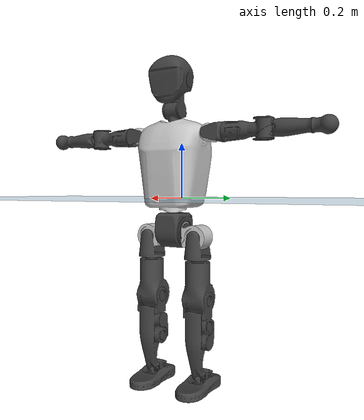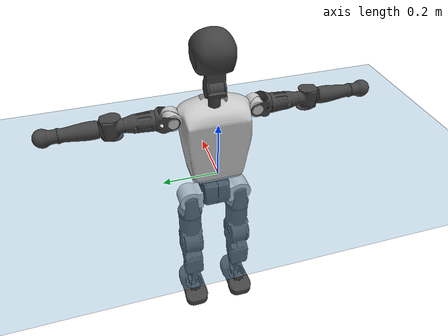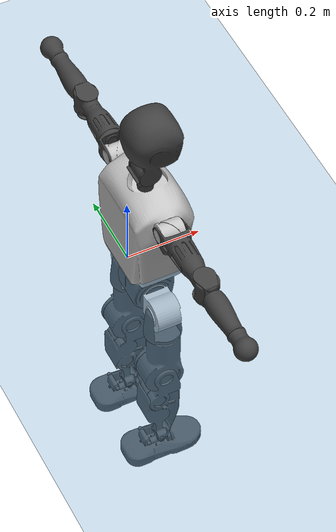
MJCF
<mujoco model="T1">
  <compiler angle="radian" assetdir="assets" balanceinertia="true" inertiafromgeom="false"/>

  <option timestep="0.005" density="1.2" viscosity="2e-05"/>

  <size nkey="1"/>

  <visual>
    <quality shadowsize="8192"/>
    <map shadowclip="0.5"/>
  </visual>

  <default>
    <default class="/">
      <joint armature="0.01" damping="0.01" frictionloss="0.1"/>
      <geom contype="0" conaffinity="0" group="1" solref="-1000 -80"/>
      <site size="0.01 0.005 0.005" group="5"/>
      <general forcelimited="true" biastype="affine" gainprm="25" biasprm="0 -25 -0.6"/>
      <default class="t1">
        <geom rgba="0.25 0.25 0.25 1"/>
        <default class="visual">
          <geom type="mesh" group="2"/>
        </default>
        <default class="collision">
          <geom group="3"/>
        </default>
        <default class="foot">
          <geom size="0.1115 0.05 0.015" type="box" condim="6" group="4" priority="1" solimp="0.015 1 0.015"/>
        </default>
        <default class="reward_collision_sphere">
          <geom group="5" rgba="1 0 0 1"/>
        </default>
      </default>
    </default>
  </default>

  <asset>
    <texture type="skybox" colorspace="auto" name="//unnamed_texture_0" builtin="gradient" rgb1="0.95 0.95 0.95" rgb2="0.95 0.95 0.95" width="100" height="600"/>
    <texture type="2d" colorspace="auto" name="texplane" builtin="checker" rgb1="0.345 0.575 0.748" rgb2="0.345 0.575 0.748" markrgb="1 1 1" width="512" height="512"/>
    <material name="MatPlane" class="/" texture="texplane" texuniform="true" texrepeat="2 2" specular="0.9"/>
    <mesh name="Trunk" class="/" file="Trunk.stl"/>
    <mesh name="H1" class="/" file="H1.stl"/>
    <mesh name="H2" class="/" file="H2.stl"/>
    <mesh name="AL1" class="/" file="AL1.stl"/>
    <mesh name="AL2" class="/" file="AL2.stl"/>
    <mesh name="AL3" class="/" file="AL3.stl"/>
    <mesh name="left_hand_link" class="/" file="left_hand_link.stl"/>
    <mesh name="AR1" class="/" file="AR1.stl"/>
    <mesh name="AR2" class="/" file="AR2.stl"/>
    <mesh name="AR3" class="/" file="AR3.stl"/>
    <mesh name="right_hand_link" class="/" file="right_hand_link.stl"/>
    <mesh name="Waist" class="/" file="Waist.stl"/>
    <mesh name="Hip_Pitch_Left" class="/" file="Hip_Pitch_Left.stl"/>
    <mesh name="Hip_Roll_Left" class="/" file="Hip_Roll_Left.stl"/>
    <mesh name="Hip_Yaw_Left" class="/" file="Hip_Yaw_Left.stl"/>
    <mesh name="Shank_Left" class="/" file="Shank_Left.stl"/>
    <mesh name="Ankle_Cross_Left" class="/" file="Ankle_Cross_Left.stl"/>
    <mesh name="left_foot_link" class="/" file="left_foot_link.stl"/>
    <mesh name="Hip_Pitch_Right" class="/" file="Hip_Pitch_Right.stl"/>
    <mesh name="Hip_Roll_Right" class="/" file="Hip_Roll_Right.stl"/>
    <mesh name="Hip_Yaw_Right" class="/" file="Hip_Yaw_Right.stl"/>
    <mesh name="Shank_Right" class="/" file="Shank_Right.stl"/>
    <mesh name="Ankle_Cross_Right" class="/" file="Ankle_Cross_Right.stl"/>
    <mesh name="right_foot_link" class="/" file="right_foot_link.stl"/>
  </asset>

  <worldbody>
    <geom name="floor" class="/" size="100 100 0.125" type="plane" group="0" material="MatPlane"/>
    <light name="toplight_shadow" class="/" pos="0 0 5" dir="0.0990148 0.0990148 -0.990148" type="directional" ambient="0.04 0.04 0.04" diffuse="0.55 0.55 0.55" specular="0.12 0.12 0.12"/>
    <light name="toplight_fill" class="/" pos="0 0 5" dir="0.0990148 0.0990148 -0.990148" type="directional" castshadow="false" ambient="0.04 0.04 0.04" diffuse="0.3 0.3 0.3" specular="0.08 0.08 0.08"/>
    <body name="trunk" childclass="t1" pos="-0.000415695 0.000213741 0.000306799" quat="1 -8.92008e-05 6.52094e-05 -7.0095e-05">
      <inertial pos="0.0457568 -0.000667294 0.109762" quat="0.999959 -0.00221717 -0.00823576 0.00288951" mass="9.38866" diaginertia="0.0379139 0.0479241 0.067219"/>
      <joint name="//unnamed_joint_0" type="free" armature="0" damping="0" frictionloss="0"/>
      <geom name="//unnamed_geom_1" class="visual" rgba="0.76 0.76 0.76 1" mesh="Trunk"/>
      <geom name="//unnamed_geom_2" class="collision" size="0.0695619 0.0927493 0.139124" pos="0.050233 0 0.124271" type="box"/>
      <geom name="//unnamed_geom_3" class="reward_collision_sphere" size="0.106662" pos="0.050233 0 0.103559"/>
      <geom name="//unnamed_geom_4" class="reward_collision_sphere" size="0.0139124" pos="0.050233 0.0773218 0"/>
      <geom name="//unnamed_geom_5" class="reward_collision_sphere" size="0.0139124" pos="0.050233 -0.0773218 0"/>
      <geom name="//unnamed_geom_6" class="reward_collision_sphere" size="0.0139124" pos="0.050233 0.0973345 0.186407"/>
      <geom name="//unnamed_geom_7" class="reward_collision_sphere" size="0.0139124" pos="0.050233 -0.0973345 0.186407"/>
      <site name="imu" pos="-0.00682021 0.00486157 -0.000232413" size="0.00927493"/>
      <camera name="track" pos="0 -1.81934 0" quat="0.707107 0.707107 0 0" mode="trackcom"/>
      <camera name="ego_camera" pos="0.10214 0 0.434949" quat="-0.5 -0.5 0.5 0.5"/>
      <body name="H1" pos="0.0498691 -0.00182061 0.249554" quat="1 -0.00013343 0.000204946 -0.000122029">
        <inertial pos="-0.000769626 -0.00100694 0.0604453" quat="0.768249 -0.0114748 0.00327775 0.640039" mass="0.357238" diaginertia="9.95087e-05 0.000136909 0.000179833"/>
        <joint name="AAHead_yaw" pos="0 0 0" axis="-0.00525998 -0.00325716 0.999981" stiffness="0.00022316" range="-1.56887 1.5564" armature="0.00966351" damping="0.0115135" frictionloss="0.0888834"/>
        <geom name="//unnamed_geom_8" class="visual" mesh="H1"/>
        <body name="H2" pos="-0.000629253 7.92633e-05 0.0638776" quat="1 3.32428e-05 0.000126198 7.11279e-05">
          <inertial pos="0.00586626 -0.000973721 0.102333" quat="0.988443 0.106029 -0.0745929 -0.0785775" mass="0.509196" diaginertia="0.000852216 0.0012025 0.00204254"/>
          <joint name="Head_pitch" pos="0 0 0" axis="3.47098e-05 -1 -9.19133e-06" range="-1.22883 0.348243" armature="0.00911793" damping="0.00685598" frictionloss="0.0920935"/>
          <geom name="//unnamed_geom_9" class="visual" mesh="H2"/>
          <geom name="//unnamed_geom_10" class="collision" size="0.0741994" pos="0.00837217 0 0.113915"/>
          <geom name="//unnamed_geom_11" class="reward_collision_sphere" size="0.0834743" pos="0.0167443 0 0.103559"/>
        </body>
      </body>
      <body name="AL1" pos="0.0480479 0.0990033 0.226139" quat="1 -5.41692e-06 0.000478985 6.69675e-05">
        <inertial pos="-0.0022777 0.0420243 -0.000294732" quat="0.50493 0.49637 -0.503488 0.495138" mass="0.413599" diaginertia="0.000551803 0.0007895 0.00034641"/>
        <joint name="Left_Shoulder_Pitch" pos="0 0 0" axis="-0.00169488 0.999993 -0.00326426" stiffness="0.000816377" range="-3.32771 1.22181" armature="0.00907386" damping="0.00735671" frictionloss="0.0939769"/>
        <geom name="//unnamed_geom_12" class="visual" rgba="0.76 0.76 0.76 1" mesh="AL1"/>
        <body name="AL2" pos="0.000730744 0.0445634 -0.000478523" quat="1 -0.000381976 -0.000261499 5.6265e-05">
          <inertial pos="0.00307588 0.0347633 -0.00119158" quat="0.488096 0.511699 -0.487962 0.511683" mass="0.129291" diaginertia="0.000168075 0.000223187 0.000215257"/>
          <joint name="Left_Shoulder_Roll" pos="0 0 0" axis="-0.999999 0.000609954 0.00137528" range="-1.58026 1.72284" armature="0.00924266" damping="0.014515" frictionloss="0.0903324"/>
          <geom name="//unnamed_geom_13" class="visual" mesh="AL2"/>
          <body name="AL3" pos="0.00225653 0.0556212 0.00132826" quat="1 0.000223517 5.61528e-06 5.10861e-05">
            <inertial pos="-0.000663614 0.0775588 5.16993e-05" quat="0.706086 0.708124 -0.00104454 -0.00129226" mass="0.805412" diaginertia="0.00529817 0.00791334 0.000735999"/>
            <joint name="Left_Elbow_Pitch" pos="0 0 0" axis="-0.000334075 -0.999996 0.00294009" stiffness="0.000647665" range="-2.28186 2.27972" armature="0.00897101" damping="0.0115963" frictionloss="0.0942558"/>
            <geom name="//unnamed_geom_14" class="visual" mesh="AL3"/>
            <geom name="//unnamed_geom_15" class="collision" size="0.0278248 0.0695619" pos="0 0.0454834 0" quat="0.707105 0.707108 0 0" type="cylinder"/>
            <geom name="//unnamed_geom_16" class="reward_collision_sphere" size="0.0333897"/>
            <body name="left_hand_link" pos="-0.00073973 0.134266 0.000997199" quat="1 -4.71205e-05 5.97265e-05 -6.87992e-05">
              <inertial pos="0.00173697 0.099169 -5.33557e-05" quat="0.710078 0.704117 0.00266351 0.00102293" mass="0.260581" diaginertia="0.00333789 0.00503389 0.00025079"/>
              <joint name="Left_Elbow_Yaw" pos="0 0 0" axis="0.00538426 0.000721279 0.999985" range="-2.46368 0.0154329" armature="0.00934729" damping="0.010554" frictionloss="0.0940419"/>
              <geom name="//unnamed_geom_17" class="visual" mesh="left_hand_link"/>
              <geom name="//unnamed_geom_18" class="collision" size="0.0278248 0.0811556" pos="0 0.118257 0" quat="0.707105 0.707108 0 0" type="cylinder"/>
              <geom name="//unnamed_geom_19" class="reward_collision_sphere" size="0.0463746"/>
              <geom name="//unnamed_geom_20" class="reward_collision_sphere" size="0.0324622" pos="0 0.100064 0"/>
              <geom name="//unnamed_geom_21" class="reward_collision_sphere" size="0.0324622" pos="0 0.195579 0"/>
            </body>
          </body>
        </body>
      </body>
      <body name="AR1" pos="0.0484818 -0.0966789 0.227" quat="1 -8.82005e-05 0.000332319 0.000244449">
        <inertial pos="-0.00194249 -0.0415923 -4.68479e-05" quat="0.504242 0.495843 -0.50412 0.495725" mass="0.420021" diaginertia="0.000567003 0.000802486 0.000348734"/>
        <joint name="Right_Shoulder_Pitch" pos="0 0 0" axis="-1.5931e-05 -1 -2.56315e-05" stiffness="0.00202334" range="-1.22383 3.29636" armature="0.00913607" damping="0.000168875" frictionloss="0.0961519"/>
        <geom name="//unnamed_geom_22" class="visual" rgba="0.76 0.76 0.76 1" mesh="AR1"/>
        <body name="AR2" pos="-9.07635e-05 -0.0432523 -0.000997658" quat="1 -2.87782e-05 -0.000122661 5.17547e-05">
          <inertial pos="0.00387086 -0.0343509 -0.00102296" quat="0.512108 0.488811 -0.509973 0.488607" mass="0.126674" diaginertia="0.000164312 0.000210072 0.000206898"/>
          <joint name="Right_Shoulder_Roll" pos="0 0 0" axis="-0.999988 -0.00376073 0.00320309" range="-1.70611 1.56168" armature="0.00886423" damping="0.0149663" frictionloss="0.0932845"/>
          <geom name="//unnamed_geom_23" class="visual" mesh="AR2"/>
          <body name="AR3" pos="-0.000419062 -0.0557748 -0.000894952" quat="1 -5.41262e-06 8.13559e-06 -9.38213e-05">
            <inertial pos="-0.00169345 -0.0784891 0.000316219" quat="0.707512 0.706689 -0.00211827 -0.0037044" mass="0.816516" diaginertia="0.00529036 0.00799991 0.000754913"/>
            <joint name="Right_Elbow_Pitch" pos="0 0 0" axis="-0.00435205 0.999987 0.00247704" range="-2.27107 2.27754" armature="0.00916959" damping="0.0114904" frictionloss="0.086725"/>
            <geom name="//unnamed_geom_24" class="visual" mesh="AR3"/>
            <geom name="//unnamed_geom_25" class="collision" size="0.0278248 0.0695619" pos="0 -0.0454834 0" quat="0.707105 0.707108 0 0" type="cylinder"/>
            <geom name="//unnamed_geom_26" class="reward_collision_sphere" size="0.0333897"/>
            <body name="right_hand_link" pos="-0.0010971 -0.134368 -0.000186532" quat="1 -3.33287e-06 5.78004e-06 -5.25879e-06">
              <inertial pos="-0.000322682 -0.0998705 0.00178144" quat="0.706584 0.707629 0.000428248 -0.000174544" mass="0.26026" diaginertia="0.00333434 0.00497257 0.000257536"/>
              <joint name="Right_Elbow_Yaw" pos="0 0 0" axis="0.00104903 0.00450469 0.999989" range="-0.0161627 2.45335" armature="0.00941962" damping="0.0128373" frictionloss="0.0878064"/>
              <geom name="//unnamed_geom_27" class="visual" mesh="right_hand_link"/>
              <geom name="//unnamed_geom_28" class="collision" size="0.0278248 0.0811556" pos="0 -0.118257 0" quat="0.707105 0.707108 0 0" type="cylinder"/>
              <geom name="//unnamed_geom_29" class="reward_collision_sphere" size="0.0463746"/>
              <geom name="//unnamed_geom_30" class="reward_collision_sphere" size="0.0324622" pos="0 -0.100064 0"/>
              <geom name="//unnamed_geom_31" class="reward_collision_sphere" size="0.0324622" pos="0 -0.195579 0"/>
            </body>
          </body>
        </body>
      </body>
      <body name="Waist" pos="0.0530342 -0.000219702 -0.119964" quat="1 3.38515e-05 -1.28124e-05 -1.21523e-05">
        <inertial pos="0.00135094 -0.000573591 0.00775015" quat="0.98306 0.00247743 -0.183241 0.00314681" mass="2.06652" diaginertia="0.00226059 0.00330486 0.00578635"/>
        <joint name="Waist" pos="0 0 0" axis="0.00131095 0.000153714 0.999999" range="-1.55858 1.58527" armature="0.0093022" damping="0.012203" frictionloss="0.0879705"/>
        <geom name="//unnamed_geom_32" class="visual" mesh="Waist"/>
        <body name="Hip_Pitch_Left" pos="-0.000576731 0.0964031 0.000684253" quat="1 1.51623e-05 -0.000173995 0.000224518">
          <inertial pos="0.000182528 -0.00734108 -0.0195895" quat="0.976112 0.216705 0.0153861 0.00256772" mass="0.813907" diaginertia="0.000747042 0.000910228 0.00151151"/>
          <joint name="Left_Hip_Pitch" pos="0 0 0" axis="0.000204924 0.999995 -0.00329185" range="-1.7852 1.57104" armature="0.00916533" damping="0.0133622" frictionloss="0.092323"/>
          <geom name="//unnamed_geom_33" class="visual" rgba="0.76 0.76 0.76 1" mesh="Hip_Pitch_Left"/>
          <body name="Hip_Roll_Left" pos="0.00142578 0.000872952 -0.0204806" quat="1 0.00058734 0.000545272 -6.61297e-05">
            <inertial pos="0.000610742 0.000102897 -0.0556672" quat="0.706754 -0.00589851 -0.00511835 0.707416" mass="0.299826" diaginertia="0.000687597 0.00092558 0.000603896"/>
            <joint name="Left_Hip_Roll" pos="0 0 0" axis="-0.999981 0.00573705 -0.00225649" range="-1.54076 0.190824" armature="0.00959646" damping="0.00980532" frictionloss="0.0971399"/>
            <geom name="//unnamed_geom_34" class="visual" mesh="Hip_Roll_Left"/>
            <geom name="//unnamed_geom_35" class="reward_collision_sphere" size="0.0510121"/>
            <body name="Hip_Yaw_Left" pos="0.000132965 0.000727261 -0.0861536" quat="1 0.000355686 -0.000223454 -0.000342102">
              <inertial pos="-0.00699447 0.000332358 -0.0918056" quat="0.696369 -0.0335493 -0.0327491 0.716151" mass="1.72552" diaginertia="0.0107144 0.0156387 0.0030824"/>
              <joint name="Left_Hip_Yaw" pos="0 0 0" axis="-0.00130916 0.000512602 -0.999999" range="-0.974068 1.02352" armature="0.00925038" damping="0.00947689" frictionloss="0.0948838"/>
              <geom name="//unnamed_geom_36" class="visual" mesh="Hip_Yaw_Left"/>
              <geom name="//unnamed_geom_37" class="collision" size="0.0463746 0.0741994" type="cylinder"/>
              <body name="Shank_Left" pos="-0.0108405 0.000609617 -0.13819" quat="1 -3.81822e-05 -5.74424e-05 9.44437e-06">
                <inertial pos="-0.00655147 -3.29594e-06 -0.129464" quat="0.998024 0.00355504 -0.0180936 0.0600688" mass="1.38639" diaginertia="0.0142208 0.0219348 0.00219639"/>
                <joint name="Left_Knee_Pitch" pos="0 0 0" axis="-0.000931727 1 -0.000316923" stiffness="0.00213248" range="-0.00740093 2.34132" armature="0.00935051" damping="0.00988209" frictionloss="0.0993358"/>
                <geom name="//unnamed_geom_38" class="visual" mesh="Shank_Left"/>
                <geom name="//unnamed_geom_39" class="collision" size="0.0463746 0.0695619" pos="0 0 -0.124271" type="cylinder"/>
                <geom name="//unnamed_geom_40" class="reward_collision_sphere" size="0.060287"/>
                <body name="Ankle_Cross_Left" pos="0.000697197 0.000469049 -0.29094" quat="1 -3.06569e-05 7.68454e-05 -8.75521e-05">
                  <inertial pos="-0.00278249 0.000138205 -0.0087712" quat="0.444227 0.549073 0.552235 0.442963" mass="0.0576901" diaginertia="1.16623e-05 1.58292e-05 1.33854e-05"/>
                  <joint name="Left_Ankle_Pitch" pos="0 0 0" axis="0.000679696 1 -0.000611581" range="-0.866414 0.35507" armature="0.00999503" damping="0.013617" frictionloss="0.0972728"/>
                  <geom name="//unnamed_geom_41" class="visual" mesh="Ankle_Cross_Left"/>
                  <body name="left_foot_link" pos="0.00102154 0.000791917 -0.011583" quat="1 2.56135e-06 4.80557e-06 1.13366e-06">
                    <inertial pos="-0.00151008 -9.74832e-05 -0.00946916" quat="-0.00124414 0.619929 -0.00181931 0.784655" mass="0.548637" diaginertia="0.0011199 0.00149074 0.00259989"/>
                    <joint name="Left_Ankle_Roll" pos="0 0 0" axis="-1 -0.000119255 0.000317261" stiffness="0.000958752" range="-0.4581 0.458786" armature="0.00919776" damping="0.00118974" frictionloss="0.090589"/>
                    <geom name="//unnamed_geom_42" class="visual" mesh="left_foot_link"/>
                    <geom name="left_foot" class="foot" size="0.101833 0.0451505 0.0146771" pos="0.00837217 0 -0.0155339"/>
                    <geom name="//unnamed_geom_44" class="reward_collision_sphere" size="0.0482296" pos="0.00837217 0 -0.0155339"/>
                    <geom name="//unnamed_geom_45" class="reward_collision_sphere" size="0.0278248" pos="0.0795356 -0.0209224 -0.0155339"/>
                    <geom name="//unnamed_geom_46" class="reward_collision_sphere" size="0.0278248" pos="-0.0586052 -0.0209224 -0.0155339"/>
                    <site name="left_foot" class="foot" pos="0.00837217 0 -0.0155339" size="0.00927493"/>
                  </body>
                </body>
              </body>
            </body>
          </body>
        </body>
        <body name="Hip_Pitch_Right" pos="0.000242729 -0.0967882 0.00068916" quat="1 -0.000218202 -1.33523e-05 5.26387e-05">
          <inertial pos="-7.07424e-05 0.00683341 -0.0191782" quat="0.97302 -0.230193 0.0154243 -0.00213906" mass="0.819557" diaginertia="0.000728442 0.00092433 0.00146931"/>
          <joint name="Right_Hip_Pitch" pos="0 0 0" axis="-0.0057691 -0.999983 -0.000677372" range="-1.60997 1.8291" armature="0.00931391" damping="0.0107989" frictionloss="0.0868645"/>
          <geom name="//unnamed_geom_47" class="visual" rgba="0.76 0.76 0.76 1" mesh="Hip_Pitch_Right"/>
          <body name="Hip_Roll_Right" pos="0.00168549 5.87551e-05 -0.0211365" quat="1 -9.00338e-05 -0.000227969 -9.3719e-06">
            <inertial pos="0.00165512 -0.000406296 -0.0552346" quat="0.708434 -0.00382028 -0.00667795 0.705735" mass="0.305832" diaginertia="0.000712544 0.000952338 0.000618893"/>
            <joint name="Right_Hip_Roll" pos="0 0 0" axis="-0.99994 0.0105276 -0.00288417" stiffness="0.00447367" range="-0.198282 1.57643" armature="0.00953842" damping="0.00964404" frictionloss="0.0933869"/>
            <geom name="//unnamed_geom_48" class="visual" mesh="Hip_Roll_Right"/>
            <geom name="//unnamed_geom_49" class="reward_collision_sphere" size="0.0510121"/>
            <body name="Hip_Yaw_Right" pos="-0.000392803 -0.000992765 -0.0857045" quat="1 -0.000148709 -7.4335e-05 0.000179086">
              <inertial pos="-0.00648777 0.000718688 -0.0918889" quat="0.71281 -0.0320708 -0.0424721 0.699335" mass="1.73127" diaginertia="0.0106177 0.0159592 0.00310745"/>
              <joint name="Right_Hip_Yaw" pos="0 0 0" axis="0.000800735 -0.00315129 -0.999995" range="-0.989617 0.998015" armature="0.00916312" damping="0.0120801" frictionloss="0.0926015"/>
              <geom name="//unnamed_geom_50" class="visual" mesh="Hip_Yaw_Right"/>
              <geom name="//unnamed_geom_51" class="collision" size="0.0463746 0.0741994" type="cylinder"/>
              <body name="Shank_Right" pos="-0.0123092 -0.00200827 -0.139043" quat="1 3.58859e-05 5.13487e-05 3.2827e-05">
                <inertial pos="-0.00677044 0.00176658 -0.126059" quat="0.999299 -0.00192719 -0.0232389 -0.0292757" mass="1.44341" diaginertia="0.0144341 0.0218987 0.0023805"/>
                <joint name="Right_Knee_Pitch" pos="0 0 0" axis="-0.000465688 -0.999999 -0.00147549" range="-2.32446 -0.00614291" armature="0.00919828" damping="0.00393805" frictionloss="0.0972714"/>
                <geom name="//unnamed_geom_52" class="visual" mesh="Shank_Right"/>
                <geom name="//unnamed_geom_53" class="collision" size="0.0463746 0.0695619" pos="0 0 -0.124271" type="cylinder"/>
                <geom name="//unnamed_geom_54" class="reward_collision_sphere" size="0.060287"/>
                <body name="Ankle_Cross_Right" pos="-0.000240612 -0.000189826 -0.290962" quat="1 4.78752e-05 9.30037e-05 -0.000175795">
                  <inertial pos="-0.00261348 -0.000165608 -0.0087032" quat="0.448484 0.551538 0.549707 0.438738" mass="0.0586481" diaginertia="1.19812e-05 1.54685e-05 1.33882e-05"/>
                  <joint name="Right_Ankle_Pitch" pos="0 0 0" axis="-0.000413674 -1 0.000651882" range="-0.369983 0.868807" armature="0.00913117" damping="0.00032686" frictionloss="0.0940293"/>
                  <geom name="//unnamed_geom_55" class="visual" mesh="Ankle_Cross_Right"/>
                  <body name="right_foot_link" pos="-0.00134653 -0.000777839 -0.0113378" quat="1 3.34036e-06 -1.79064e-06 -1.07988e-05">
                    <inertial pos="0.000130843 -0.000777594 -0.0085122" quat="0.0024214 0.621973 -0.00146869 0.783033" mass="0.546014" diaginertia="0.00111914 0.00147079 0.00260586"/>
                    <joint name="Right_Ankle_Roll" pos="0 0 0" axis="-1 -0.000502603 0.000573384" range="-0.433748 0.44913" armature="0.00904716" damping="0.00537594" frictionloss="0.0945061"/>
                    <geom name="//unnamed_geom_56" class="visual" mesh="right_foot_link"/>
                    <geom name="right_foot" class="foot" size="0.0969145 0.0432049 0.0135808" pos="0.00837217 0 -0.0155339"/>
                    <geom name="//unnamed_geom_58" class="reward_collision_sphere" size="0.0370997"/>
                    <geom name="//unnamed_geom_59" class="reward_collision_sphere" size="0.0278248" pos="0.00837217 0 -0.0155339"/>
                    <geom name="//unnamed_geom_60" class="reward_collision_sphere" size="0.0278248" pos="0.0795356 0.0209224 -0.0155339"/>
                    <geom name="//unnamed_geom_61" class="reward_collision_sphere" size="0.0278248" pos="-0.0586052 0.0209224 -0.0155339"/>
                    <site name="right_foot" class="foot" pos="0.00837217 0 -0.0155339" size="0.00927493"/>
                  </body>
                </body>
              </body>
            </body>
          </body>
        </body>
      </body>
    </body>
  </worldbody>

  <contact>
    <pair class="/" geom1="floor" geom2="left_foot" name="//unnamed_contact_0"/>
    <pair class="/" geom1="floor" geom2="right_foot" name="//unnamed_contact_1"/>
  </contact>

  <actuator>
    <general name="AAHead_yaw" class="/" joint="AAHead_yaw" forcerange="-6.44262 6.44262" gainprm="22.1719" biasprm="0 -22.1719 -0.540168"/>
    <general name="Head_pitch" class="/" joint="Head_pitch" forcerange="-6.52568 6.52568" gainprm="22.1719" biasprm="0 -22.1719 -0.540168"/>
    <general name="Left_Shoulder_Pitch" class="/" joint="Left_Shoulder_Pitch" forcerange="-16.8473 16.8473" gainprm="22.1719" biasprm="0 -22.1719 -0.540168"/>
    <general name="Left_Shoulder_Roll" class="/" joint="Left_Shoulder_Roll" forcerange="-16.6561 16.6561" gainprm="22.1719" biasprm="0 -22.1719 -0.540168"/>
    <general name="Left_Elbow_Pitch" class="/" joint="Left_Elbow_Pitch" forcerange="-16.7635 16.7635" gainprm="22.1719" biasprm="0 -22.1719 -0.540168"/>
    <general name="Left_Elbow_Yaw" class="/" joint="Left_Elbow_Yaw" forcerange="-16.344 16.344" gainprm="22.1719" biasprm="0 -22.1719 -0.540168"/>
    <general name="Right_Shoulder_Pitch" class="/" joint="Right_Shoulder_Pitch" forcerange="-17.4098 17.4098" gainprm="22.1719" biasprm="0 -22.1719 -0.540168"/>
    <general name="Right_Shoulder_Roll" class="/" joint="Right_Shoulder_Roll" forcerange="-16.8348 16.8348" gainprm="22.1719" biasprm="0 -22.1719 -0.540168"/>
    <general name="Right_Elbow_Pitch" class="/" joint="Right_Elbow_Pitch" forcerange="-16.6717 16.6717" gainprm="22.1719" biasprm="0 -22.1719 -0.540168"/>
    <general name="Right_Elbow_Yaw" class="/" joint="Right_Elbow_Yaw" forcerange="-16.5032 16.5032" gainprm="22.1719" biasprm="0 -22.1719 -0.540168"/>
    <general name="Waist" class="/" joint="Waist" forcerange="-27.5282 27.5282" gainprm="22.1719" biasprm="0 -22.1719 -0.540168"/>
    <general name="Left_Hip_Pitch" class="/" joint="Left_Hip_Pitch" forcerange="-41.5961 41.5961" gainprm="22.1719" biasprm="0 -22.1719 -0.540168"/>
    <general name="Left_Hip_Roll" class="/" joint="Left_Hip_Roll" forcerange="-28.1257 28.1257" gainprm="22.1719" biasprm="0 -22.1719 -0.540168"/>
    <general name="Left_Hip_Yaw" class="/" joint="Left_Hip_Yaw" forcerange="-27.8354 27.8354" gainprm="22.1719" biasprm="0 -22.1719 -0.540168"/>
    <general name="Left_Knee_Pitch" class="/" joint="Left_Knee_Pitch" forcerange="-53.2915 53.2915" gainprm="22.1719" biasprm="0 -22.1719 -0.540168"/>
    <general name="Left_Ankle_Pitch" class="/" joint="Left_Ankle_Pitch" forcerange="-19.1595 19.1595" gainprm="22.1719" biasprm="0 -22.1719 -0.540168"/>
    <general name="Left_Ankle_Roll" class="/" joint="Left_Ankle_Roll" forcerange="-13.9767 13.9767" gainprm="22.1719" biasprm="0 -22.1719 -0.540168"/>
    <general name="Right_Hip_Pitch" class="/" joint="Right_Hip_Pitch" forcerange="-41.2744 41.2744" gainprm="22.1719" biasprm="0 -22.1719 -0.540168"/>
    <general name="Right_Hip_Roll" class="/" joint="Right_Hip_Roll" forcerange="-27.375 27.375" gainprm="22.1719" biasprm="0 -22.1719 -0.540168"/>
    <general name="Right_Hip_Yaw" class="/" joint="Right_Hip_Yaw" forcerange="-28.6576 28.6576" gainprm="22.1719" biasprm="0 -22.1719 -0.540168"/>
    <general name="Right_Knee_Pitch" class="/" joint="Right_Knee_Pitch" forcerange="-55.1193 55.1193" gainprm="22.1719" biasprm="0 -22.1719 -0.540168"/>
    <general name="Right_Ankle_Pitch" class="/" joint="Right_Ankle_Pitch" forcerange="-17.9807 17.9807" gainprm="22.1719" biasprm="0 -22.1719 -0.540168"/>
    <general name="Right_Ankle_Roll" class="/" joint="Right_Ankle_Roll" forcerange="-13.5307 13.5307" gainprm="22.1719" biasprm="0 -22.1719 -0.540168"/>
  </actuator>

  <sensor>
    <gyro site="imu" name="imu_angular_velocity"/>
    <velocimeter site="imu" name="imu_linear_velocity"/>
    <framelinvel objtype="site" objname="left_foot" name="left_foot_global_linear_velocity"/>
    <framelinvel objtype="site" objname="right_foot" name="right_foot_global_linear_velocity"/>
  </sensor>

  <keyframe>
    <key name="home" qpos="0 0 0.6385 1 0 0 0 0 0 0 1.4 0 -0.4 0 -1.4 0 0.4 0 -0.4 0 0 0.8 -0.4 0 0.4 0 0 -0.8 0.4 0"/>
  </keyframe>
</mujoco>
